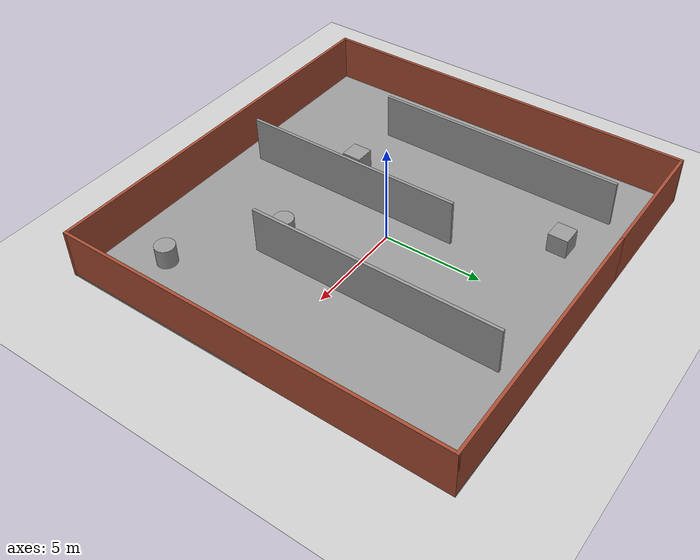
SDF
<sdf version="1.7">
 <world name="default">
  <light name="sun" type="directional">
   <pose>0 0 10 0 -0 0</pose>
   <diffuse>0.8 0.8 0.8 1</diffuse>
   <specular>0.2 0.2 0.2 1</specular>
   <attenuation>
    <range>1000</range>
    <constant>0.9</constant>
    <linear>0.01</linear>
    <quadratic>0.001</quadratic>
   </attenuation>
   <direction>-0.5 0.1 -0.9</direction>
   <spot><inner_angle>0</inner_angle><outer_angle>0</outer_angle><falloff>0</falloff></spot>
  </light>
  <model name="ground_plane">
   <static>1</static>
   <link name="link">
    <collision name="collision">
     <geometry><plane><normal>0 0 1</normal><size>100 100</size></plane></geometry>
     <surface>
      <contact><collide_bitmask>65535</collide_bitmask></contact>
      <friction><ode><mu>100</mu><mu2>50</mu2></ode></friction>
     </surface>
    </collision>
    <visual name="visual">
     <cast_shadows>0</cast_shadows>
     <geometry><plane><normal>0 0 1</normal><size>100 100</size></plane></geometry>
     <material>
      <script><uri>file://media/materials/scripts/gazebo.material</uri><name>Gazebo/Grey</name></script>
     </material>
    </visual>
   </link>
  </model>
  <gravity>0 0 -9.8</gravity>
  <magnetic_field>6e-06 2.3e-05 -4.2e-05</magnetic_field>
  <atmosphere type="adiabatic"/>
  <physics type="ode">
   <max_step_size>0.001</max_step_size>
   <real_time_factor>1</real_time_factor>
   <real_time_update_rate>1000</real_time_update_rate>
  </physics>
  <scene><ambient>0.4 0.4 0.4 1</ambient><background>0.7 0.7 0.7 1</background><shadows>1</shadows></scene>
  <spherical_coordinates>
   <surface_model>EARTH_WGS84</surface_model>
   <latitude_deg>0</latitude_deg>
   <longitude_deg>0</longitude_deg>
   <elevation>0</elevation>
   <heading_deg>0</heading_deg>
  </spherical_coordinates>
  <model name="Maze">
   <pose>-0.086638 -0.011537 0 0 -0 0</pose>
   <link name="Floor_0">
    <collision name="Floor_0_Collision">
     <geometry><box><size>20.25 20 0.1</size></box></geometry>
     <pose>0 0 0.05 0 -0 0</pose>
    </collision>
    <visual name="Floor_0_Visual">
     <pose>0 0 0.05 0 -0 0</pose>
     <geometry><box><size>20.25 20 0.1</size></box></geometry>
     <material>
      <script><uri>file://media/materials/scripts/gazebo.material</uri><name>Gazebo/Grey</name></script>
      <ambient>1 1 1 1</ambient>
     </material>
     <meta><layer>0</layer></meta>
    </visual>
   </link>
   <link name="Wall_34">
    <collision name="Wall_34_Collision">
     <geometry><box><size>13.5 0.15 2.5</size></box></geometry>
     <pose>0 0 1.25 0 -0 0</pose>
    </collision>
    <visual name="Wall_34_Visual">
     <pose>0 0 1.25 0 -0 0</pose>
     <geometry><box><size>13.5 0.15 2.5</size></box></geometry>
     <material>
      <script><uri>file://media/materials/scripts/gazebo.material</uri><name>Gazebo/Bricks</name></script>
      <ambient>1 1 1 1</ambient>
     </material>
     <meta><layer>0</layer></meta>
    </visual>
    <pose>3.375 9.925 0 0 -0 0</pose>
   </link>
   <link name="Wall_35">
    <collision name="Wall_35_Collision">
     <geometry><box><size>20 0.15 2.5</size></box></geometry>
     <pose>0 0 1.25 0 -0 0</pose>
    </collision>
    <visual name="Wall_35_Visual">
     <pose>0 0 1.25 0 -0 0</pose>
     <geometry><box><size>20 0.15 2.5</size></box></geometry>
     <material>
      <script><uri>file://media/materials/scripts/gazebo.material</uri><name>Gazebo/Bricks</name></script>
      <ambient>1 1 1 1</ambient>
     </material>
     <meta><layer>0</layer></meta>
    </visual>
    <pose>10.05 0 0 0 -0 -1.5708</pose>
   </link>
   <link name="Wall_36">
    <collision name="Wall_36_Collision">
     <geometry><box><size>20.25 0.15 2.5</size></box></geometry>
     <pose>0 0 1.25 0 -0 0</pose>
    </collision>
    <visual name="Wall_36_Visual">
     <pose>0 0 1.25 0 -0 0</pose>
     <geometry><box><size>20.25 0.15 2.5</size></box></geometry>
     <material>
      <script><uri>file://media/materials/scripts/gazebo.material</uri><name>Gazebo/Bricks</name></script>
      <ambient>1 1 1 1</ambient>
     </material>
     <meta><layer>0</layer></meta>
    </visual>
    <pose>-0 -9.925 0 0 -0 3.14159</pose>
   </link>
   <link name="Wall_37">
    <collision name="Wall_37_Collision">
     <geometry><box><size>20 0.15 2.5</size></box></geometry>
     <pose>0 0 1.25 0 -0 0</pose>
    </collision>
    <visual name="Wall_37_Visual">
     <pose>0 0 1.25 0 -0 0</pose>
     <geometry><box><size>20 0.15 2.5</size></box></geometry>
     <material>
      <script><uri>file://media/materials/scripts/gazebo.material</uri><name>Gazebo/Bricks</name></script>
      <ambient>1 1 1 1</ambient>
     </material>
     <meta><layer>0</layer></meta>
    </visual>
    <pose>-10.05 0 0 0 -0 1.5708</pose>
   </link>
   <link name="Wall_38">
    <collision name="Wall_38_Collision">
     <geometry><box><size>6.9 0.15 2.5</size></box></geometry>
     <pose>0 0 1.25 0 -0 0</pose>
    </collision>
    <visual name="Wall_38_Visual">
     <pose>0 0 1.25 0 -0 0</pose>
     <geometry><box><size>6.9 0.15 2.5</size></box></geometry>
     <material>
      <script><uri>file://media/materials/scripts/gazebo.material</uri><name>Gazebo/Bricks</name></script>
      <ambient>1 1 1 1</ambient>
     </material>
     <meta><layer>0</layer></meta>
    </visual>
    <pose>-6.675 9.925 0 0 -0 0</pose>
   </link>
   <link name="Wall_66">
    <collision name="Wall_66_Collision">
     <geometry><box><size>12.75 0.15 2.5</size></box></geometry>
     <pose>0 0 1.25 0 -0 0</pose>
    </collision>
    <visual name="Wall_66_Visual">
     <pose>0 0 1.25 0 -0 0</pose>
     <geometry><box><size>12.75 0.15 2.5</size></box></geometry>
     <material>
      <script><uri>file://media/materials/scripts/gazebo.material</uri><name>Gazebo/Grey</name></script>
      <ambient>1 1 1 1</ambient>
     </material>
     <meta><layer>0</layer></meta>
    </visual>
    <pose>-6.63929 1.81909 0 0 -0 -1.5708</pose>
   </link>
   <link name="Wall_68">
    <collision name="Wall_68_Collision">
     <geometry><box><size>11.5 0.15 2.5</size></box></geometry>
     <pose>0 0 1.25 0 -0 0</pose>
    </collision>
    <visual name="Wall_68_Visual">
     <pose>0 0 1.25 0 -0 0</pose>
     <geometry><box><size>11.5 0.15 2.5</size></box></geometry>
     <material>
      <script><uri>file://media/materials/scripts/gazebo.material</uri><name>Gazebo/Grey</name></script>
      <ambient>1 1 1 1</ambient>
     </material>
     <meta><layer>0</layer></meta>
    </visual>
    <pose>-1.17933 -3.00925 0 0 -0 -1.5708</pose>
   </link>
   <link name="Wall_70">
    <collision name="Wall_70_Collision">
     <geometry><box><size>12.75 0.15 2.5</size></box></geometry>
     <pose>0 0 1.25 0 -0 0</pose>
    </collision>
    <visual name="Wall_70_Visual">
     <pose>0 0 1.25 0 -0 0</pose>
     <geometry><box><size>12.75 0.15 2.5</size></box></geometry>
     <material>
      <script><uri>file://media/materials/scripts/gazebo.material</uri><name>Gazebo/Grey</name></script>
      <ambient>1 1 1 1</ambient>
     </material>
     <meta><layer>0</layer></meta>
    </visual>
    <pose>4.23186 2.04749 0 0 -0 -1.5708</pose>
   </link>
   <static>1</static>
  </model>
  <model name="unit_box">
   <pose>-3.423 -4.21758 0.6 -0 -0 -0</pose>
   <link name="link">
    <inertial>
     <mass>1</mass>
     <inertia>
      <ixx>0.166667</ixx>
      <ixy>0</ixy>
      <ixz>0</ixz>
      <iyy>0.166667</iyy>
      <iyz>0</iyz>
      <izz>0.166667</izz>
     </inertia>
    </inertial>
    <collision name="collision"><geometry><box><size>1 1 1</size></box></geometry></collision>
    <visual name="visual">
     <geometry><box><size>1 1 1</size></box></geometry>
     <material>
      <script><name>Gazebo/Grey</name><uri>file://media/materials/scripts/gazebo.material</uri></script>
     </material>
    </visual>
   </link>
  </model>
  <model name="unit_cylinder">
   <pose>2.62963 -3.97941 0.6 -0 -0 -1.8e-05</pose>
   <link name="link">
    <inertial>
     <mass>1</mass>
     <inertia><ixx>0.145833</ixx><ixy>0</ixy><ixz>0</ixz><iyy>0.145833</iyy><iyz>0</iyz><izz>0.125</izz></inertia>
    </inertial>
    <collision name="collision">
     <geometry><cylinder><radius>0.5</radius><length>1</length></cylinder></geometry>
    </collision>
    <visual name="visual">
     <geometry><cylinder><radius>0.5</radius><length>1</length></cylinder></geometry>
     <material>
      <script><name>Gazebo/Grey</name><uri>file://media/materials/scripts/gazebo.material</uri></script>
     </material>
    </visual>
   </link>
  </model>
  <model name="unit_cylinder_0">
   <pose>7.11103 -7.13506 0.59999 0 -0 -1.4e-05</pose>
   <link name="link">
    <inertial>
     <mass>1</mass>
     <inertia><ixx>0.145833</ixx><ixy>0</ixy><ixz>0</ixz><iyy>0.145833</iyy><iyz>0</iyz><izz>0.125</izz></inertia>
    </inertial>
    <collision name="collision">
     <geometry><cylinder><radius>0.5</radius><length>1</length></cylinder></geometry>
    </collision>
    <visual name="visual">
     <geometry><cylinder><radius>0.5</radius><length>1</length></cylinder></geometry>
     <material>
      <script><name>Gazebo/Grey</name><uri>file://media/materials/scripts/gazebo.material</uri></script>
     </material>
    </visual>
   </link>
  </model>
  <model name="unit_box_0">
   <pose>-3.84955 7.04353 0.6 -0 -0 -0</pose>
   <link name="link">
    <inertial>
     <mass>1</mass>
     <inertia>
      <ixx>0.166667</ixx>
      <ixy>0</ixy>
      <ixz>0</ixz>
      <iyy>0.166667</iyy>
      <iyz>0</iyz>
      <izz>0.166667</izz>
     </inertia>
    </inertial>
    <collision name="collision"><geometry><box><size>1 1 1</size></box></geometry></collision>
    <visual name="visual">
     <geometry><box><size>1 1 1</size></box></geometry>
     <material>
      <script><name>Gazebo/Grey</name><uri>file://media/materials/scripts/gazebo.material</uri></script>
     </material>
    </visual>
   </link>
  </model>
 </world>
</sdf>
